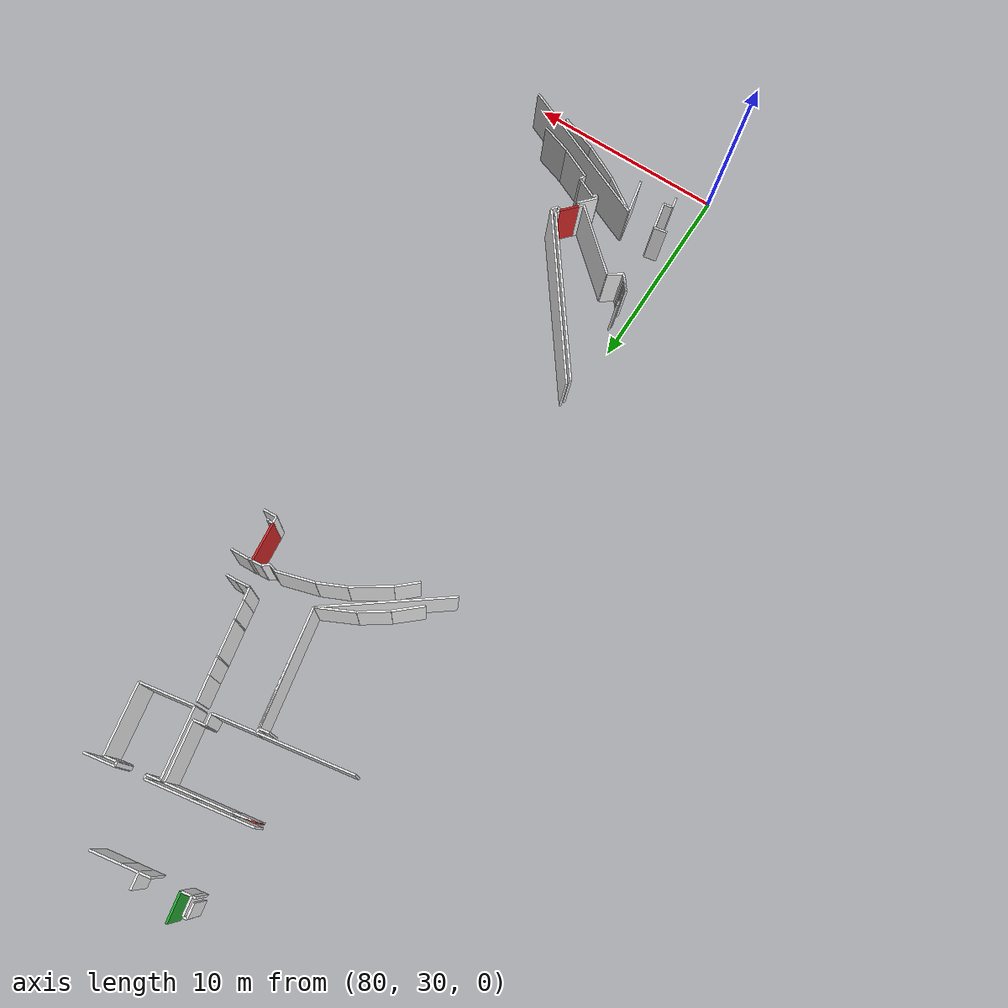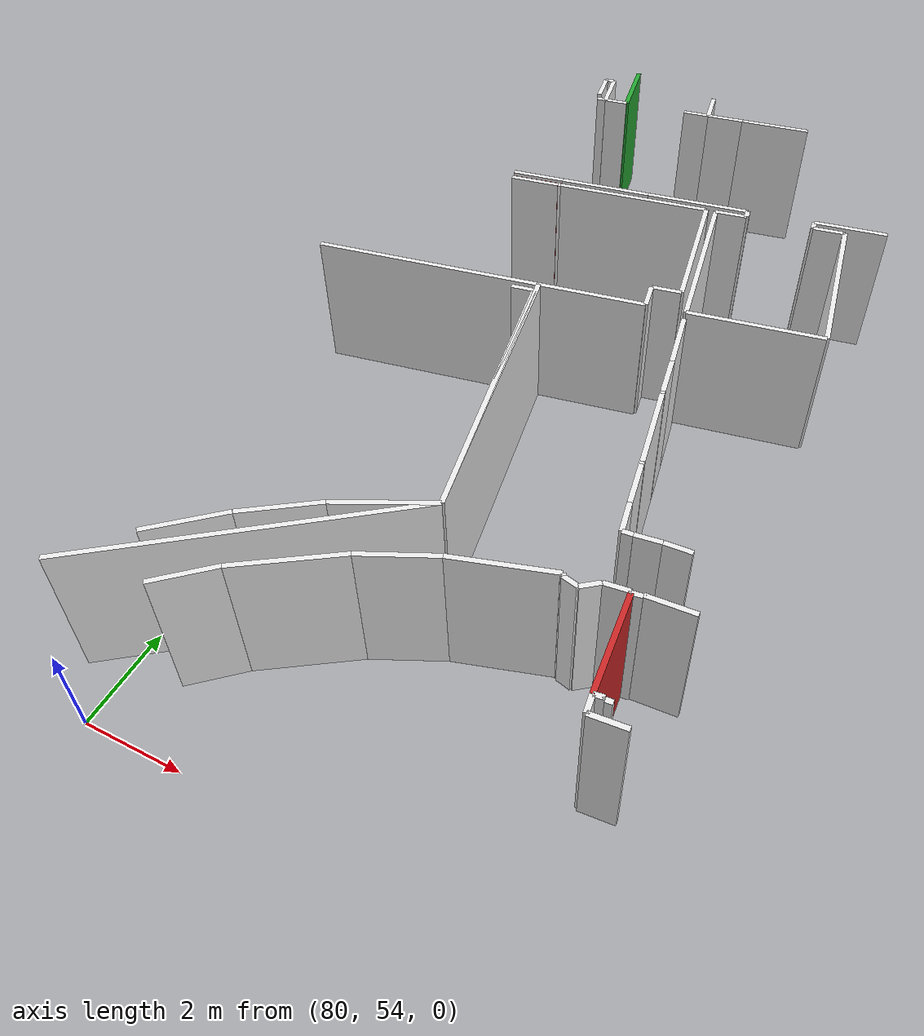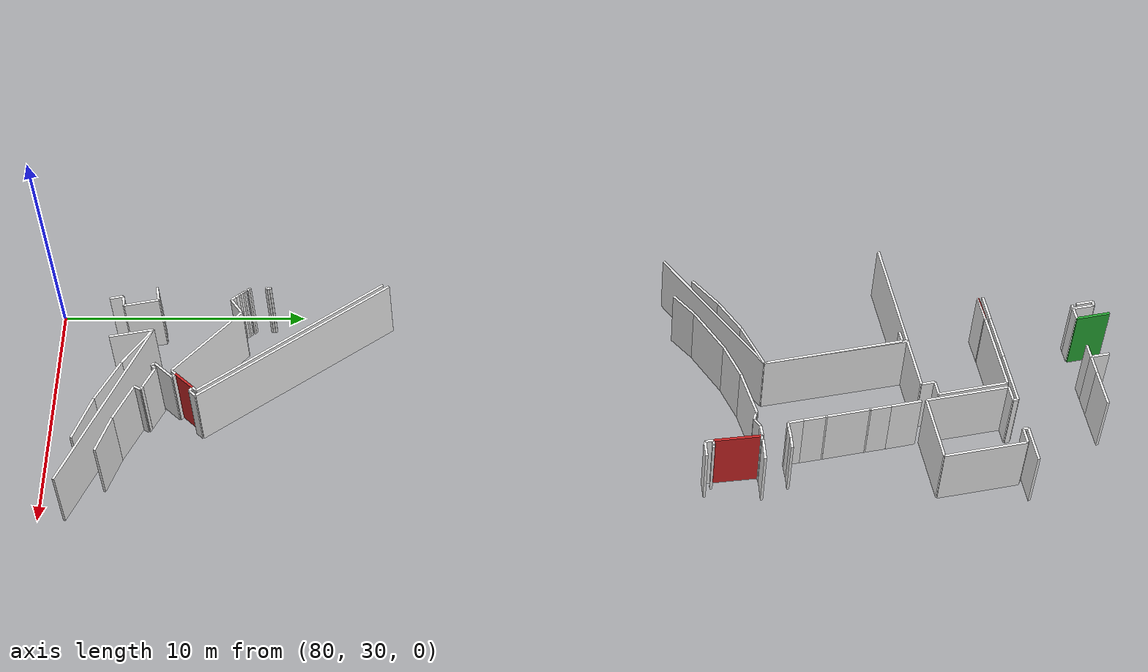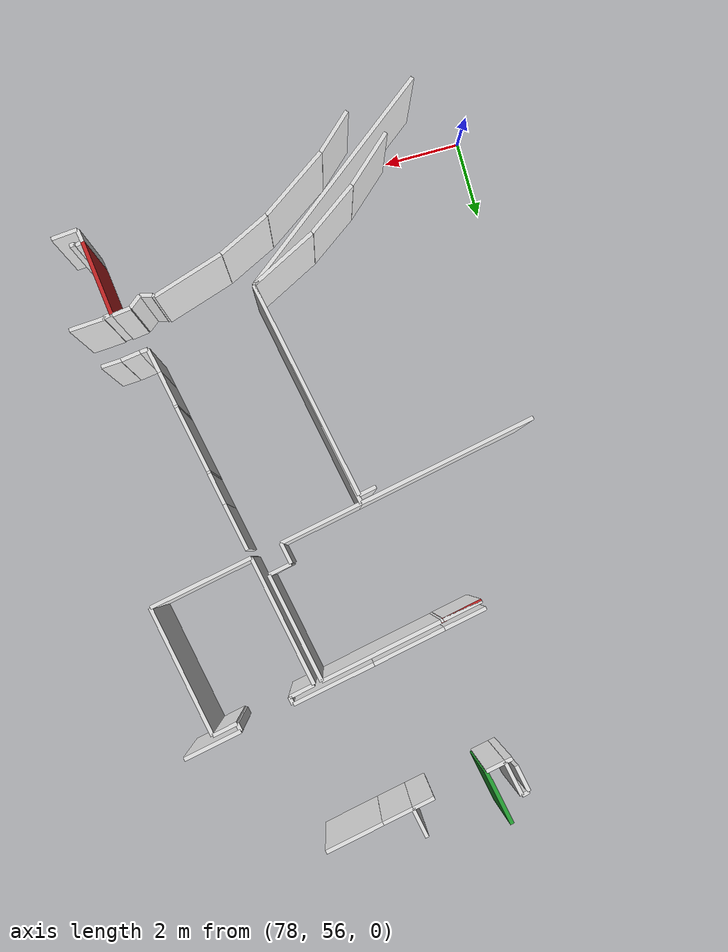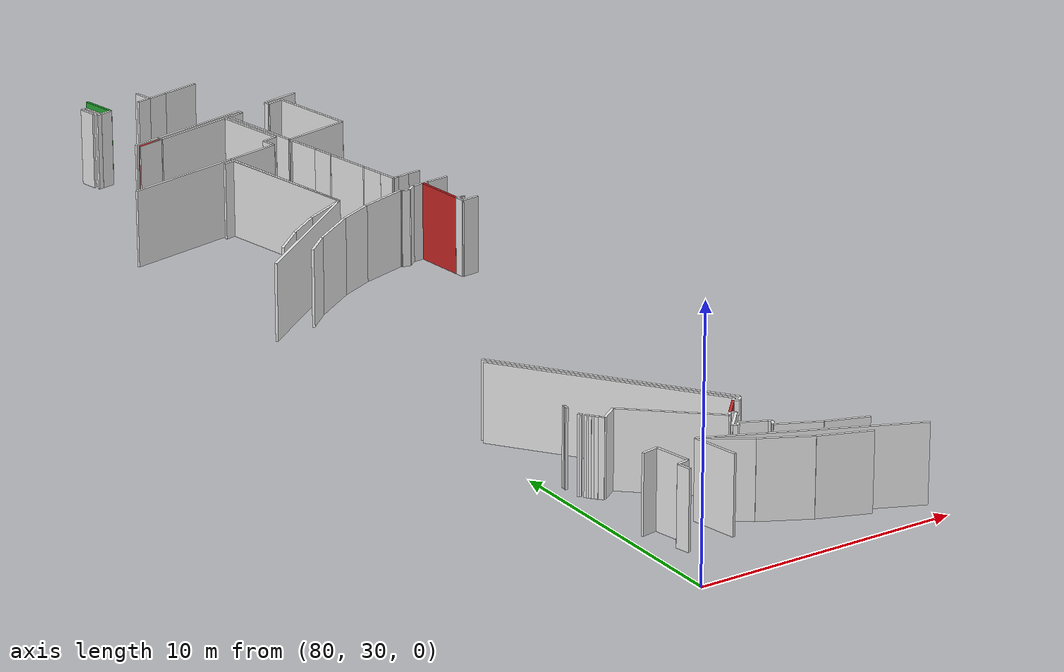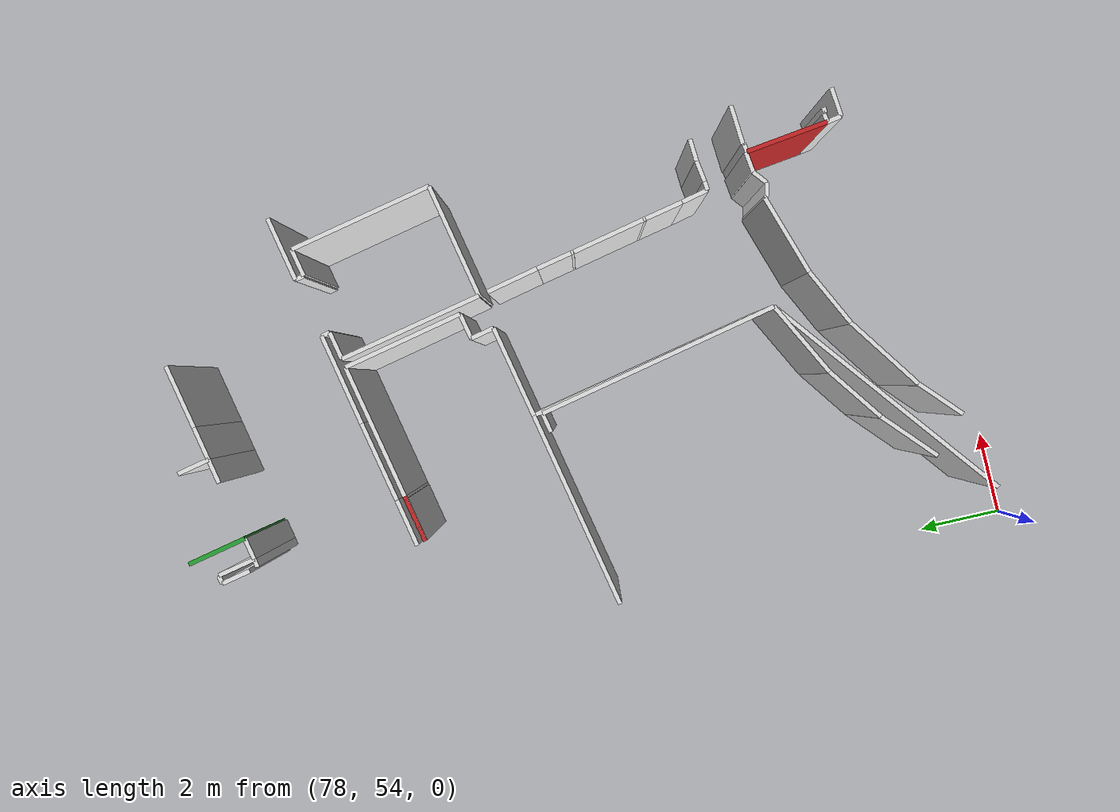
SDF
<sdf version="1.6">
 <world name="default">
  <model name="wall_81.6_67.9">
   <static>true</static>
   <pose>81.55000000001746 67.88999999989755 1.5 0 0 0.2009542638673007</pose>
   <link name="link">
    <visual name="visual">
     <geometry><box><size>1.1021796587332557 0.1 3</size></box></geometry>
     <material>
      <script><uri>file://media/materials/scripts/gazebo.material</uri><name>Gazebo/Red</name></script>
     </material>
    </visual>
   </link>
  </model>
  <model name="wall_85.3_35.8">
   <static>true</static>
   <pose>85.27999999999884 35.77000000001863 1.5 0 0 0.8424789459730314</pose>
   <link name="link">
    <visual name="visual">
     <geometry><box><size>0.9915644206490059 0.1 3</size></box></geometry>
     <material>
      <script><uri>file://media/materials/scripts/gazebo.material</uri><name>Gazebo/Red</name></script>
     </material>
    </visual>
   </link>
  </model>
  <model name="wall_87.9_57.8">
   <static>true</static>
   <pose>87.93499999999767 57.77499999990687 1.5 0 0 -1.4509545189031208</pose>
   <link name="link">
    <visual name="visual">
     <geometry><box><size>1.9237983263743257 0.1 3</size></box></geometry>
     <material>
      <script><uri>file://media/materials/scripts/gazebo.material</uri><name>Gazebo/Red</name></script>
     </material>
    </visual>
   </link>
  </model>
  <model name="wall_81.9_72.4">
   <static>true</static>
   <pose>81.875 72.38500000000931 1.5 0 0 1.7681918866447774</pose>
   <link name="link">
    <visual name="visual">
     <geometry><box><size>1.3767352687650285 0.1 3</size></box></geometry>
     <material>
      <script><uri>file://media/materials/scripts/gazebo.material</uri><name>Gazebo/Green</name></script>
     </material>
    </visual>
   </link>
  </model>
  <model name="wall_81.2_72.1">
   <static>true</static>
   <pose>81.21500000002561 72.10000000009313 1.5 0 0 1.7652764429739842</pose>
   <link name="link">
    <visual name="visual">
     <geometry><box><size>0.6726812025007879 0.1 3</size></box></geometry>
     <material>
      <script><uri>file://media/materials/scripts/gazebo.material</uri><name>Gazebo/White</name></script>
     </material>
    </visual>
   </link>
  </model>
  <model name="wall_80.9_64.3">
   <static>true</static>
   <pose>80.89999999999418 64.30999999982305 1.5 0 0 0.19486391966931105</pose>
   <link name="link">
    <visual name="visual">
     <geometry><box><size>4.647967297627117 0.1 3</size></box></geometry>
     <material>
      <script><uri>file://media/materials/scripts/gazebo.material</uri><name>Gazebo/White</name></script>
     </material>
    </visual>
   </link>
  </model>
  <model name="wall_84.2_65.0">
   <static>true</static>
   <pose>84.23999999999069 64.96999999997206 1.5 0 0 0.1955806799877843</pose>
   <link name="link">
    <visual name="visual">
     <geometry><box><size>2.1612033685678047 0.1 3</size></box></geometry>
     <material>
      <script><uri>file://media/materials/scripts/gazebo.material</uri><name>Gazebo/White</name></script>
     </material>
    </visual>
   </link>
  </model>
  <model name="wall_85.2_65.5">
   <static>true</static>
   <pose>85.24499999999534 65.45000000018626 1.5 0 0 1.7717505904446613</pose>
   <link name="link">
    <visual name="visual">
     <geometry><box><size>0.551089829371909 0.1 3</size></box></geometry>
     <material>
      <script><uri>file://media/materials/scripts/gazebo.material</uri><name>Gazebo/White</name></script>
     </material>
    </visual>
   </link>
  </model>
  <model name="wall_85.5_65.8">
   <static>true</static>
   <pose>85.48500000001513 65.78000000002794 1.5 0 0 0.20065287673540141</pose>
   <link name="link">
    <visual name="visual">
     <geometry><box><size>0.6020797288941763 0.1 3</size></box></geometry>
     <material>
      <script><uri>file://media/materials/scripts/gazebo.material</uri><name>Gazebo/White</name></script>
     </material>
    </visual>
   </link>
  </model>
  <model name="wall_85.5_67.2">
   <static>true</static>
   <pose>85.5 67.22999999998137 1.5 0 0 1.7695750116283997</pose>
   <link name="link">
    <visual name="visual">
     <geometry><box><size>2.835842026896503 0.1 3</size></box></geometry>
     <material>
      <script><uri>file://media/materials/scripts/gazebo.material</uri><name>Gazebo/White</name></script>
     </material>
    </visual>
   </link>
  </model>
  <model name="wall_83.7_68.3">
   <static>true</static>
   <pose>83.65499999999884 68.31000000005588 1.5 0 0 -2.9460409760625255</pose>
   <link name="link">
    <visual name="visual">
     <geometry><box><size>3.190814942895208 0.1 3</size></box></geometry>
     <material>
      <script><uri>file://media/materials/scripts/gazebo.material</uri><name>Gazebo/White</name></script>
     </material>
    </visual>
   </link>
  </model>
  <model name="wall_82.1_68.0">
   <static>true</static>
   <pose>82.06000000002678 67.98999999999069 1.5 0 0 -2.8198420989021127</pose>
   <link name="link">
    <visual name="visual">
     <geometry><box><size>0.06324555320704896 0.1 3</size></box></geometry>
     <material>
      <script><uri>file://media/materials/scripts/gazebo.material</uri><name>Gazebo/White</name></script>
     </material>
    </visual>
   </link>
  </model>
  <model name="wall_81.5_67.9">
   <static>true</static>
   <pose>81.52000000001863 67.87999999988824 1.5 0 0 -2.9479706605614444</pose>
   <link name="link">
    <visual name="visual">
     <geometry><box><size>1.039422916869021 0.1 3</size></box></geometry>
     <material>
      <script><uri>file://media/materials/scripts/gazebo.material</uri><name>Gazebo/White</name></script>
     </material>
    </visual>
   </link>
  </model>
  <model name="wall_87.8_69.1">
   <static>true</static>
   <pose>87.75 69.11499999999069 1.5 0 0 -2.9411940992371117</pose>
   <link name="link">
    <visual name="visual">
     <geometry><box><size>0.653069674774366 0.1 3</size></box></geometry>
     <material>
      <script><uri>file://media/materials/scripts/gazebo.material</uri><name>Gazebo/White</name></script>
     </material>
    </visual>
   </link>
  </model>
  <model name="wall_85.7_68.7">
   <static>true</static>
   <pose>85.73999999999069 68.71499999985099 1.5 0 0 -2.9411940999358763</pose>
   <link name="link">
    <visual name="visual">
     <geometry><box><size>0.6530696746816714 0.1 3</size></box></geometry>
     <material>
      <script><uri>file://media/materials/scripts/gazebo.material</uri><name>Gazebo/White</name></script>
     </material>
    </visual>
   </link>
  </model>
  <model name="wall_85.8_67.0">
   <static>true</static>
   <pose>85.75 66.98999999999069 1.5 0 0 -1.374559514958863</pose>
   <link name="link">
    <visual name="visual">
     <geometry><box><size>3.384966764819104 0.1 3</size></box></geometry>
     <material>
      <script><uri>file://media/materials/scripts/gazebo.material</uri><name>Gazebo/White</name></script>
     </material>
    </visual>
   </link>
  </model>
  <model name="wall_87.4_65.6">
   <static>true</static>
   <pose>87.40499999999884 65.59000000008382 1.5 0 0 0.19376449375486982</pose>
   <link name="link">
    <visual name="visual">
     <geometry><box><size>2.70053698360794 0.1 3</size></box></geometry>
     <material>
      <script><uri>file://media/materials/scripts/gazebo.material</uri><name>Gazebo/White</name></script>
     </material>
    </visual>
   </link>
  </model>
  <model name="wall_88.4_67.5">
   <static>true</static>
   <pose>88.39999999999418 67.51500000013039 1.5 0 0 1.7664587861152812</pose>
   <link name="link">
    <visual name="visual">
     <geometry><box><size>3.394775397645977 0.1 3</size></box></geometry>
     <material>
      <script><uri>file://media/materials/scripts/gazebo.material</uri><name>Gazebo/White</name></script>
     </material>
    </visual>
   </link>
  </model>
  <model name="wall_83.1_39.9">
   <static>true</static>
   <pose>83.10500000001048 39.88000000012107 1.5 0 0 -0.9358171018698879</pose>
   <link name="link">
    <visual name="visual">
     <geometry><box><size>8.918323833668834 0.1 3</size></box></geometry>
     <material>
      <script><uri>file://media/materials/scripts/gazebo.material</uri><name>Gazebo/White</name></script>
     </material>
    </visual>
   </link>
  </model>
  <model name="wall_85.7_36.2">
   <static>true</static>
   <pose>85.67999999999302 36.21500000008382 1.5 0 0 -2.3217253895523142</pose>
   <link name="link">
    <visual name="visual">
     <geometry><box><size>0.20518284522827895 0.1 3</size></box></geometry>
     <material>
      <script><uri>file://media/materials/scripts/gazebo.material</uri><name>Gazebo/White</name></script>
     </material>
    </visual>
   </link>
  </model>
  <model name="wall_84.9_35.3">
   <static>true</static>
   <pose>84.86500000001979 35.31000000005588 1.5 0 0 -2.3276308331322193</pose>
   <link name="link">
    <visual name="visual">
     <geometry><box><size>0.24758836783494145 0.1 3</size></box></geometry>
     <material>
      <script><uri>file://media/materials/scripts/gazebo.material</uri><name>Gazebo/White</name></script>
     </material>
    </visual>
   </link>
  </model>
  <model name="wall_83.3_36.5">
   <static>true</static>
   <pose>83.3300000000163 36.515000000130385 1.5 0 0 2.4126008939400343</pose>
   <link name="link">
    <visual name="visual">
     <geometry><box><size>3.8882000976497033 0.1 3</size></box></geometry>
     <material>
      <script><uri>file://media/materials/scripts/gazebo.material</uri><name>Gazebo/White</name></script>
     </material>
    </visual>
   </link>
  </model>
  <model name="wall_81.6_37.6">
   <static>true</static>
   <pose>81.55999999999767 37.574999999953434 1.5 0 0 -2.508166770423084</pose>
   <link name="link">
    <visual name="visual">
     <geometry><box><size>0.7940403013767493 0.1 3</size></box></geometry>
     <material>
      <script><uri>file://media/materials/scripts/gazebo.material</uri><name>Gazebo/White</name></script>
     </material>
    </visual>
   </link>
  </model>
  <model name="wall_81.2_37.4">
   <static>true</static>
   <pose>81.1699999999837 37.419999999925494 1.5 0 0 2.2896263260044316</pose>
   <link name="link">
    <visual name="visual">
     <geometry><box><size>0.21260291637603487 0.1 3</size></box></geometry>
     <material>
      <script><uri>file://media/materials/scripts/gazebo.material</uri><name>Gazebo/White</name></script>
     </material>
    </visual>
   </link>
  </model>
  <model name="wall_81.1_37.6">
   <static>true</static>
   <pose>81.05499999999302 37.55499999993481 1.5 0 0 2.2565258381046025</pose>
   <link name="link">
    <visual name="visual">
     <geometry><box><size>0.1421267039139652 0.1 3</size></box></geometry>
     <material>
      <script><uri>file://media/materials/scripts/gazebo.material</uri><name>Gazebo/White</name></script>
     </material>
    </visual>
   </link>
  </model>
  <model name="wall_81.0_37.6">
   <static>true</static>
   <pose>80.98000000001048 37.64500000001863 1.5 0 0 2.2794225967996993</pose>
   <link name="link">
    <visual name="visual">
     <geometry><box><size>0.09219544479768974 0.1 3</size></box></geometry>
     <material>
      <script><uri>file://media/materials/scripts/gazebo.material</uri><name>Gazebo/White</name></script>
     </material>
    </visual>
   </link>
  </model>
  <model name="wall_80.9_37.7">
   <static>true</static>
   <pose>80.9200000000128 37.71999999997206 1.5 0 0 2.2142974379164873</pose>
   <link name="link">
    <visual name="visual">
     <geometry><box><size>0.09999999968567863 0.1 3</size></box></geometry>
     <material>
      <script><uri>file://media/materials/scripts/gazebo.material</uri><name>Gazebo/White</name></script>
     </material>
    </visual>
   </link>
  </model>
  <model name="wall_80.9_37.8">
   <static>true</static>
   <pose>80.86999999999534 37.78999999980442 1.5 0 0 2.158798930342464</pose>
   <link name="link">
    <visual name="visual">
     <geometry><box><size>0.0721110255764384 0.1 3</size></box></geometry>
     <material>
      <script><uri>file://media/materials/scripts/gazebo.material</uri><name>Gazebo/White</name></script>
     </material>
    </visual>
   </link>
  </model>
  <model name="wall_80.8_37.9">
   <static>true</static>
   <pose>80.82499999998254 37.85499999998137 1.5 0 0 2.1910458106539252</pose>
   <link name="link">
    <visual name="visual">
     <geometry><box><size>0.08602325290617123 0.1 3</size></box></geometry>
     <material>
      <script><uri>file://media/materials/scripts/gazebo.material</uri><name>Gazebo/White</name></script>
     </material>
    </visual>
   </link>
  </model>
  <model name="wall_80.7_38.0">
   <static>true</static>
   <pose>80.72000000000116 37.98999999999069 1.5 0 0 2.158798929670837</pose>
   <link name="link">
    <visual name="visual">
     <geometry><box><size>0.07211102554415061 0.1 3</size></box></geometry>
     <material>
      <script><uri>file://media/materials/scripts/gazebo.material</uri><name>Gazebo/White</name></script>
     </material>
    </visual>
   </link>
  </model>
  <model name="wall_80.7_38.1">
   <static>true</static>
   <pose>80.67500000001746 38.050000000046566 1.5 0 0 2.2655346024190655</pose>
   <link name="link">
    <visual name="visual">
     <geometry><box><size>0.07810249679454152 0.1 3</size></box></geometry>
     <material>
      <script><uri>file://media/materials/scripts/gazebo.material</uri><name>Gazebo/White</name></script>
     </material>
    </visual>
   </link>
  </model>
  <model name="wall_80.6_38.7">
   <static>true</static>
   <pose>80.63000000000466 38.71999999997206 1.5 0 0 1.3258176622984403</pose>
   <link name="link">
    <visual name="visual">
     <geometry><box><size>0.08246211213739423 0.1 3</size></box></geometry>
     <material>
      <script><uri>file://media/materials/scripts/gazebo.material</uri><name>Gazebo/White</name></script>
     </material>
    </visual>
   </link>
  </model>
  <model name="wall_80.6_38.8">
   <static>true</static>
   <pose>80.64500000001863 38.80499999993481 1.5 0 0 1.4601391059049407</pose>
   <link name="link">
    <visual name="visual">
     <geometry><box><size>0.0905538516971156 0.1 3</size></box></geometry>
     <material>
      <script><uri>file://media/materials/scripts/gazebo.material</uri><name>Gazebo/White</name></script>
     </material>
    </visual>
   </link>
  </model>
  <model name="wall_80.6_38.9">
   <static>true</static>
   <pose>80.64500000001863 38.890000000130385 1.5 0 0 1.695151321341658</pose>
   <link name="link">
    <visual name="visual">
     <geometry><box><size>0.08062257755807112 0.1 3</size></box></geometry>
     <material>
      <script><uri>file://media/materials/scripts/gazebo.material</uri><name>Gazebo/White</name></script>
     </material>
    </visual>
   </link>
  </model>
  <model name="wall_88.5_58.8">
   <static>true</static>
   <pose>88.45999999999185 58.80999999982305 1.5 0 0 -3.0750244897495804</pose>
   <link name="link">
    <visual name="visual">
     <geometry><box><size>0.9019977826712443 0.1 3</size></box></geometry>
     <material>
      <script><uri>file://media/materials/scripts/gazebo.material</uri><name>Gazebo/White</name></script>
     </material>
    </visual>
   </link>
  </model>
  <model name="wall_88.0_58.8">
   <static>true</static>
   <pose>88.01500000001397 58.769999999785796 1.5 0 0 -1.1071487177940904</pose>
   <link name="link">
    <visual name="visual">
     <geometry><box><size>0.022360679795822902 0.1 3</size></box></geometry>
     <material>
      <script><uri>file://media/materials/scripts/gazebo.material</uri><name>Gazebo/White</name></script>
     </material>
    </visual>
   </link>
  </model>
  <model name="wall_87.9_58.7">
   <static>true</static>
   <pose>87.9200000000128 58.74499999987893 1.5 0 0 -2.992702706990747</pose>
   <link name="link">
    <visual name="visual">
     <geometry><box><size>0.20223748414268597 0.1 3</size></box></geometry>
     <material>
      <script><uri>file://media/materials/scripts/gazebo.material</uri><name>Gazebo/White</name></script>
     </material>
    </visual>
   </link>
  </model>
  <model name="wall_88.1_56.8">
   <static>true</static>
   <pose>88.14499999998952 56.83499999996275 1.5 0 0 0.15660187831921837</pose>
   <link name="link">
    <visual name="visual">
     <geometry><box><size>0.19235384065968367 0.1 3</size></box></geometry>
     <material>
      <script><uri>file://media/materials/scripts/gazebo.material</uri><name>Gazebo/White</name></script>
     </material>
    </visual>
   </link>
  </model>
  <model name="wall_88.2_56.8">
   <static>true</static>
   <pose>88.24499999999534 56.83499999996275 1.5 0 0 -1.2490457747265609</pose>
   <link name="link">
    <visual name="visual">
     <geometry><box><size>0.031622776852017344 0.1 3</size></box></geometry>
     <material>
      <script><uri>file://media/materials/scripts/gazebo.material</uri><name>Gazebo/White</name></script>
     </material>
    </visual>
   </link>
  </model>
  <model name="wall_88.3_56.8">
   <static>true</static>
   <pose>88.31500000000233 56.824999999953434 1.5 0 0 0.07677189311872727</pose>
   <link name="link">
    <visual name="visual">
     <geometry><box><size>0.13038404812726748 0.1 3</size></box></geometry>
     <material>
      <script><uri>file://media/materials/scripts/gazebo.material</uri><name>Gazebo/White</name></script>
     </material>
    </visual>
   </link>
  </model>
  <model name="wall_81.4_55.8">
   <static>true</static>
   <pose>81.41499999997905 55.79000000003725 1.5 0 0 0.7444853337953005</pose>
   <link name="link">
    <visual name="visual">
     <geometry><box><size>1.2101652781804741 0.1 3</size></box></geometry>
     <material>
      <script><uri>file://media/materials/scripts/gazebo.material</uri><name>Gazebo/White</name></script>
     </material>
    </visual>
   </link>
  </model>
  <model name="wall_82.7_56.8">
   <static>true</static>
   <pose>82.7049999999872 56.78000000002794 1.5 0 0 0.6015335773054936</pose>
   <link name="link">
    <visual name="visual">
     <geometry><box><size>2.0498048685846277 0.1 3</size></box></geometry>
     <material>
      <script><uri>file://media/materials/scripts/gazebo.material</uri><name>Gazebo/White</name></script>
     </material>
    </visual>
   </link>
  </model>
  <model name="wall_84.2_57.7">
   <static>true</static>
   <pose>84.20999999999185 57.67999999993481 1.5 0 0 0.45145309163045305</pose>
   <link name="link">
    <visual name="visual">
     <geometry><box><size>1.4669696657345486 0.1 3</size></box></geometry>
     <material>
      <script><uri>file://media/materials/scripts/gazebo.material</uri><name>Gazebo/White</name></script>
     </material>
    </visual>
   </link>
  </model>
  <model name="wall_85.8_58.3">
   <static>true</static>
   <pose>85.79000000000815 58.29000000003725 1.5 0 0 0.30535858012147843</pose>
   <link name="link">
    <visual name="visual">
     <geometry><box><size>1.9292485584238948 0.1 3</size></box></geometry>
     <material>
      <script><uri>file://media/materials/scripts/gazebo.material</uri><name>Gazebo/White</name></script>
     </material>
    </visual>
   </link>
  </model>
  <model name="wall_86.7_58.6">
   <static>true</static>
   <pose>86.72500000000582 58.55499999993481 1.5 0 0 -1.0303768294346956</pose>
   <link name="link">
    <visual name="visual">
     <geometry><box><size>0.058309519172461015 0.1 3</size></box></geometry>
     <material>
      <script><uri>file://media/materials/scripts/gazebo.material</uri><name>Gazebo/White</name></script>
     </material>
    </visual>
   </link>
  </model>
  <model name="wall_86.9_58.5">
   <static>true</static>
   <pose>86.88999999998487 58.49499999987893 1.5 0 0 -0.22923193275564116</pose>
   <link name="link">
    <visual name="visual">
     <geometry><box><size>0.30805843596555793 0.1 3</size></box></geometry>
     <material>
      <script><uri>file://media/materials/scripts/gazebo.material</uri><name>Gazebo/White</name></script>
     </material>
    </visual>
   </link>
  </model>
  <model name="wall_87.2_58.6">
   <static>true</static>
   <pose>87.19000000000233 58.580000000074506 1.5 0 0 0.6747409426021391</pose>
   <link name="link">
    <visual name="visual">
     <geometry><box><size>0.38418745442196317 0.1 3</size></box></geometry>
     <material>
      <script><uri>file://media/materials/scripts/gazebo.material</uri><name>Gazebo/White</name></script>
     </material>
    </visual>
   </link>
  </model>
  <model name="wall_87.6_58.7">
   <static>true</static>
   <pose>87.57500000001164 58.72999999998137 1.5 0 0 0.12697278876365076</pose>
   <link name="link">
    <visual name="visual">
     <geometry><box><size>0.4738143095396791 0.1 3</size></box></geometry>
     <material>
      <script><uri>file://media/materials/scripts/gazebo.material</uri><name>Gazebo/White</name></script>
     </material>
    </visual>
   </link>
  </model>
  <model name="wall_87.8_58.7">
   <static>true</static>
   <pose>87.81500000000233 58.74499999987893 1.5 0 0 -1.249045770069948</pose>
   <link name="link">
    <visual name="visual">
     <geometry><box><size>0.031622776410252254 0.1 3</size></box></geometry>
     <material>
      <script><uri>file://media/materials/scripts/gazebo.material</uri><name>Gazebo/White</name></script>
     </material>
    </visual>
   </link>
  </model>
  <model name="wall_88.1_56.7">
   <static>true</static>
   <pose>88.07499999998254 56.65500000002794 1.5 0 0 -1.4204248986466843</pose>
   <link name="link">
    <visual name="visual">
     <geometry><box><size>0.33376638497708727 0.1 3</size></box></geometry>
     <material>
      <script><uri>file://media/materials/scripts/gazebo.material</uri><name>Gazebo/White</name></script>
     </material>
    </visual>
   </link>
  </model>
  <model name="wall_88.4_56.5">
   <static>true</static>
   <pose>88.43499999999767 56.52000000001863 1.5 0 0 0.0893139923809162</pose>
   <link name="link">
    <visual name="visual">
     <geometry><box><size>0.6726812023588774 0.1 3</size></box></geometry>
     <material>
      <script><uri>file://media/materials/scripts/gazebo.material</uri><name>Gazebo/White</name></script>
     </material>
    </visual>
   </link>
  </model>
  <model name="wall_87.9_32.8">
   <static>true</static>
   <pose>87.86499999999069 32.80499999993481 1.5 0 0 2.8081238857159727</pose>
   <link name="link">
    <visual name="visual">
     <geometry><box><size>1.6191973319729474 0.1 3</size></box></geometry>
     <material>
      <script><uri>file://media/materials/scripts/gazebo.material</uri><name>Gazebo/White</name></script>
     </material>
    </visual>
   </link>
  </model>
  <model name="wall_86.3_33.4">
   <static>true</static>
   <pose>86.3299999999872 33.43499999982305 1.5 0 0 2.6989393348950688</pose>
   <link name="link">
    <visual name="visual">
     <geometry><box><size>1.704259369904788 0.1 3</size></box></geometry>
     <material>
      <script><uri>file://media/materials/scripts/gazebo.material</uri><name>Gazebo/White</name></script>
     </material>
    </visual>
   </link>
  </model>
  <model name="wall_85.6_33.9">
   <static>true</static>
   <pose>85.63500000000931 33.92999999993481 1.5 0 0 1.0475180049988588</pose>
   <link name="link">
    <visual name="visual">
     <geometry><box><size>0.3001666206174493 0.1 3</size></box></geometry>
     <material>
      <script><uri>file://media/materials/scripts/gazebo.material</uri><name>Gazebo/White</name></script>
     </material>
    </visual>
   </link>
  </model>
  <model name="wall_85.6_34.1">
   <static>true</static>
   <pose>85.64500000001863 34.09499999997206 1.5 0 0 2.647651285684841</pose>
   <link name="link">
    <visual name="visual">
     <geometry><box><size>0.14764823052695686 0.1 3</size></box></geometry>
     <material>
      <script><uri>file://media/materials/scripts/gazebo.material</uri><name>Gazebo/White</name></script>
     </material>
    </visual>
   </link>
  </model>
  <model name="wall_85.1_34.3">
   <static>true</static>
   <pose>85.125 34.3499999998603 1.5 0 0 2.6912186013369697</pose>
   <link name="link">
    <visual name="visual">
     <geometry><box><size>1.0107917688674317 0.1 3</size></box></geometry>
     <material>
      <script><uri>file://media/materials/scripts/gazebo.material</uri><name>Gazebo/White</name></script>
     </material>
    </visual>
   </link>
  </model>
  <model name="wall_84.6_34.5">
   <static>true</static>
   <pose>84.61499999999069 34.484999999869615 1.5 0 0 -2.145101157111568</pose>
   <link name="link">
    <visual name="visual">
     <geometry><box><size>0.20248456724302388 0.1 3</size></box></geometry>
     <material>
      <script><uri>file://media/materials/scripts/gazebo.material</uri><name>Gazebo/White</name></script>
     </material>
    </visual>
   </link>
  </model>
  <model name="wall_84.5_34.4">
   <static>true</static>
   <pose>84.48499999998603 34.449999999953434 1.5 0 0 2.5535900496840247</pose>
   <link name="link">
    <visual name="visual">
     <geometry><box><size>0.18027756384423263 0.1 3</size></box></geometry>
     <material>
      <script><uri>file://media/materials/scripts/gazebo.material</uri><name>Gazebo/White</name></script>
     </material>
    </visual>
   </link>
  </model>
  <model name="wall_84.8_34.9">
   <static>true</static>
   <pose>84.75499999997555 34.88500000000931 1.5 0 0 0.8401379434576747</pose>
   <link name="link">
    <visual name="visual">
     <geometry><box><size>1.0339245620604522 0.1 3</size></box></geometry>
     <material>
      <script><uri>file://media/materials/scripts/gazebo.material</uri><name>Gazebo/White</name></script>
     </material>
    </visual>
   </link>
  </model>
  <model name="wall_85.0_35.3">
   <static>true</static>
   <pose>85.02499999999418 35.33499999996275 1.5 0 0 2.427501955287879</pose>
   <link name="link">
    <visual name="visual">
     <geometry><box><size>0.19849433231320573 0.1 3</size></box></geometry>
     <material>
      <script><uri>file://media/materials/scripts/gazebo.material</uri><name>Gazebo/White</name></script>
     </material>
    </visual>
   </link>
  </model>
  <model name="wall_85.7_36.1">
   <static>true</static>
   <pose>85.69000000000233 36.080000000074506 1.5 0 0 -0.6435011091425303</pose>
   <link name="link">
    <visual name="visual">
     <geometry><box><size>0.20000000009313226 0.1 3</size></box></geometry>
     <material>
      <script><uri>file://media/materials/scripts/gazebo.material</uri><name>Gazebo/White</name></script>
     </material>
    </visual>
   </link>
  </model>
  <model name="wall_85.9_36.1">
   <static>true</static>
   <pose>85.88500000000931 36.14999999990687 1.5 0 0 0.8465463256603086</pose>
   <link name="link">
    <visual name="visual">
     <geometry><box><size>0.34713109897444044 0.1 3</size></box></geometry>
     <material>
      <script><uri>file://media/materials/scripts/gazebo.material</uri><name>Gazebo/White</name></script>
     </material>
    </visual>
   </link>
  </model>
  <model name="wall_83.3_40.0">
   <static>true</static>
   <pose>83.26500000001397 40.0 1.5 0 0 2.2047677262171748</pose>
   <link name="link">
    <visual name="visual">
     <geometry><box><size>9.234419310697987 0.1 3</size></box></geometry>
     <material>
      <script><uri>file://media/materials/scripts/gazebo.material</uri><name>Gazebo/White</name></script>
     </material>
    </visual>
   </link>
  </model>
  <model name="wall_83.8_72.5">
   <static>true</static>
   <pose>83.84500000000116 72.45999999996275 1.5 0 0 -1.3708033702928581</pose>
   <link name="link">
    <visual name="visual">
     <geometry><box><size>0.7550496674526308 0.1 3</size></box></geometry>
     <material>
      <script><uri>file://media/materials/scripts/gazebo.material</uri><name>Gazebo/White</name></script>
     </material>
    </visual>
   </link>
  </model>
  <model name="wall_83.6_72.0">
   <static>true</static>
   <pose>83.63999999998487 72.03499999991618 1.5 0 0 -2.9476335065532946</pose>
   <link name="link">
    <visual name="visual">
     <geometry><box><size>0.5707013229077953 0.1 3</size></box></geometry>
     <material>
      <script><uri>file://media/materials/scripts/gazebo.material</uri><name>Gazebo/White</name></script>
     </material>
    </visual>
   </link>
  </model>
  <model name="wall_81.8_71.7">
   <static>true</static>
   <pose>81.76000000000931 71.65999999991618 1.5 0 0 -2.944197093560812</pose>
   <link name="link">
    <visual name="visual">
     <geometry><box><size>0.5099019513775432 0.1 3</size></box></geometry>
     <material>
      <script><uri>file://media/materials/scripts/gazebo.material</uri><name>Gazebo/White</name></script>
     </material>
    </visual>
   </link>
  </model>
  <model name="wall_81.4_72.0">
   <static>true</static>
   <pose>81.42500000001746 72.04000000003725 1.5 0 0 1.7659547538191616</pose>
   <link name="link">
    <visual name="visual">
     <geometry><box><size>0.8766413180834757 0.1 3</size></box></geometry>
     <material>
      <script><uri>file://media/materials/scripts/gazebo.material</uri><name>Gazebo/White</name></script>
     </material>
    </visual>
   </link>
  </model>
  <model name="wall_81.2_72.5">
   <static>true</static>
   <pose>81.24500000002445 72.45000000018626 1.5 0 0 -2.9340964269693144</pose>
   <link name="link">
    <visual name="visual">
     <geometry><box><size>0.19416487839942884 0.1 3</size></box></geometry>
     <material>
      <script><uri>file://media/materials/scripts/gazebo.material</uri><name>Gazebo/White</name></script>
     </material>
    </visual>
   </link>
  </model>
  <model name="wall_88.1_59.9">
   <static>true</static>
   <pose>88.13500000000931 59.89500000001863 1.5 0 0 -3.08283683036559</pose>
   <link name="link">
    <visual name="visual">
     <geometry><box><size>0.5108815910024022 0.1 3</size></box></geometry>
     <material>
      <script><uri>file://media/materials/scripts/gazebo.material</uri><name>Gazebo/White</name></script>
     </material>
    </visual>
   </link>
  </model>
  <model name="wall_87.6_59.8">
   <static>true</static>
   <pose>87.63500000000931 59.84499999997206 1.5 0 0 -2.9996955993182444</pose>
   <link name="link">
    <visual name="visual">
     <geometry><box><size>0.494974746797656 0.1 3</size></box></geometry>
     <material>
      <script><uri>file://media/materials/scripts/gazebo.material</uri><name>Gazebo/White</name></script>
     </material>
    </visual>
   </link>
  </model>
  <model name="wall_87.3_59.8">
   <static>true</static>
   <pose>87.29000000000815 59.800000000046566 1.5 0 0 -3.0419240010121844</pose>
   <link name="link">
    <visual name="visual">
     <geometry><box><size>0.20099751243585498 0.1 3</size></box></geometry>
     <material>
      <script><uri>file://media/materials/scripts/gazebo.material</uri><name>Gazebo/White</name></script>
     </material>
    </visual>
   </link>
  </model>
  <model name="wall_87.1_60.1">
   <static>true</static>
   <pose>87.125 60.10000000009313 1.5 0 0 1.7774795452501364</pose>
   <link name="link">
    <visual name="visual">
     <geometry><box><size>0.6334824386988099 0.1 3</size></box></geometry>
     <material>
      <script><uri>file://media/materials/scripts/gazebo.material</uri><name>Gazebo/White</name></script>
     </material>
    </visual>
   </link>
  </model>
  <model name="wall_87.0_60.9">
   <static>true</static>
   <pose>86.97500000000582 60.85000000009313 1.5 0 0 1.7616274295219554</pose>
   <link name="link">
    <visual name="visual">
     <geometry><box><size>0.896270048477446 0.1 3</size></box></geometry>
     <material>
      <script><uri>file://media/materials/scripts/gazebo.material</uri><name>Gazebo/White</name></script>
     </material>
    </visual>
   </link>
  </model>
  <model name="wall_86.9_61.3">
   <static>true</static>
   <pose>86.88500000000931 61.32000000006519 1.5 0 0 1.7359450042095235</pose>
   <link name="link">
    <visual name="visual">
     <geometry><box><size>0.060827625359632334 0.1 3</size></box></geometry>
     <material>
      <script><uri>file://media/materials/scripts/gazebo.material</uri><name>Gazebo/White</name></script>
     </material>
    </visual>
   </link>
  </model>
  <model name="wall_86.7_62.2">
   <static>true</static>
   <pose>86.70999999999185 62.19500000006519 1.5 0 0 1.7693295426026865</pose>
   <link name="link">
    <visual name="visual">
     <geometry><box><size>1.7238619433784548 0.1 3</size></box></geometry>
     <material>
      <script><uri>file://media/materials/scripts/gazebo.material</uri><name>Gazebo/White</name></script>
     </material>
    </visual>
   </link>
  </model>
  <model name="wall_86.5_63.1">
   <static>true</static>
   <pose>86.53500000000349 63.07000000006519 1.5 0 0 1.7359450032656154</pose>
   <link name="link">
    <visual name="visual">
     <geometry><box><size>0.06082762535006306 0.1 3</size></box></geometry>
     <material>
      <script><uri>file://media/materials/scripts/gazebo.material</uri><name>Gazebo/White</name></script>
     </material>
    </visual>
   </link>
  </model>
  <model name="wall_86.5_63.5">
   <static>true</static>
   <pose>86.45000000001164 63.51000000000931 1.5 0 0 1.7634970855340029</pose>
   <link name="link">
    <visual name="visual">
     <geometry><box><size>0.8354639428099243 0.1 3</size></box></geometry>
     <material>
      <script><uri>file://media/materials/scripts/gazebo.material</uri><name>Gazebo/White</name></script>
     </material>
    </visual>
   </link>
  </model>
  <model name="wall_86.2_64.5">
   <static>true</static>
   <pose>86.24499999999534 64.52499999990687 1.5 0 0 1.7745410076848542</pose>
   <link name="link">
    <visual name="visual">
     <geometry><box><size>1.2355565547193088 0.1 3</size></box></geometry>
     <material>
      <script><uri>file://media/materials/scripts/gazebo.material</uri><name>Gazebo/White</name></script>
     </material>
    </visual>
   </link>
  </model>
  <model name="wall_88.1_69.4">
   <static>true</static>
   <pose>88.13000000000466 69.39500000001863 1.5 0 0 -2.948098244273777</pose>
   <link name="link">
    <visual name="visual">
     <geometry><box><size>1.508144555394632 0.1 3</size></box></geometry>
     <material>
      <script><uri>file://media/materials/scripts/gazebo.material</uri><name>Gazebo/White</name></script>
     </material>
    </visual>
   </link>
  </model>
  <model name="wall_87.4_69.1">
   <static>true</static>
   <pose>87.41000000000349 69.14999999990687 1.5 0 0 -1.3734007672248605</pose>
   <link name="link">
    <visual name="visual">
     <geometry><box><size>0.2039607807222492 0.1 3</size></box></geometry>
     <material>
      <script><uri>file://media/materials/scripts/gazebo.material</uri><name>Gazebo/White</name></script>
     </material>
    </visual>
   </link>
  </model>
  <model name="wall_86.0_68.9">
   <static>true</static>
   <pose>86.04000000000815 68.875 1.5 0 0 1.7782925526897098</pose>
   <link name="link">
    <visual name="visual">
     <geometry><box><size>0.1941648787861511 0.1 3</size></box></geometry>
     <material>
      <script><uri>file://media/materials/scripts/gazebo.material</uri><name>Gazebo/White</name></script>
     </material>
    </visual>
   </link>
  </model>
  <model name="wall_85.0_68.8">
   <static>true</static>
   <pose>84.96499999999651 68.76500000013039 1.5 0 0 -2.9496714915424067</pose>
   <link name="link">
    <visual name="visual">
     <geometry><box><size>2.1494650497993386 0.1 3</size></box></geometry>
     <material>
      <script><uri>file://media/materials/scripts/gazebo.material</uri><name>Gazebo/White</name></script>
     </material>
    </visual>
   </link>
  </model>
  <model name="wall_83.0_68.4">
   <static>true</static>
   <pose>82.97999999998137 68.375 1.5 0 0 -2.9452312194754318</pose>
   <link name="link">
    <visual name="visual">
     <geometry><box><size>1.8964440408382035 0.1 3</size></box></geometry>
     <material>
      <script><uri>file://media/materials/scripts/gazebo.material</uri><name>Gazebo/White</name></script>
     </material>
    </visual>
   </link>
  </model>
  <model name="wall_81.5_68.1">
   <static>true</static>
   <pose>81.50500000000466 68.08499999996275 1.5 0 0 -2.9512641139252844</pose>
   <link name="link">
    <visual name="visual">
     <geometry><box><size>1.1100450440920377 0.1 3</size></box></geometry>
     <material>
      <script><uri>file://media/materials/scripts/gazebo.material</uri><name>Gazebo/White</name></script>
     </material>
    </visual>
   </link>
  </model>
  <model name="wall_81.4_71.6">
   <static>true</static>
   <pose>81.41500000000815 71.59499999997206 1.5 0 0 0.15660187592798475</pose>
   <link name="link">
    <visual name="visual">
     <geometry><box><size>0.19235384058705793 0.1 3</size></box></geometry>
     <material>
      <script><uri>file://media/materials/scripts/gazebo.material</uri><name>Gazebo/White</name></script>
     </material>
    </visual>
   </link>
  </model>
  <model name="wall_84.3_72.2">
   <static>true</static>
   <pose>84.30999999999767 72.16500000003725 1.5 0 0 0.18998828837264137</pose>
   <link name="link">
    <visual name="visual">
     <geometry><box><size>0.7942921377902116 0.1 3</size></box></geometry>
     <material>
      <script><uri>file://media/materials/scripts/gazebo.material</uri><name>Gazebo/White</name></script>
     </material>
    </visual>
   </link>
  </model>
  <model name="wall_85.4_72.4">
   <static>true</static>
   <pose>85.44000000000233 72.38500000000931 1.5 0 0 0.19349440901301387</pose>
   <link name="link">
    <visual name="visual">
     <geometry><box><size>1.5081445553050903 0.1 3</size></box></geometry>
     <material>
      <script><uri>file://media/materials/scripts/gazebo.material</uri><name>Gazebo/White</name></script>
     </material>
    </visual>
   </link>
  </model>
  <model name="wall_80.9_34.3">
   <static>true</static>
   <pose>80.94000000000233 34.31000000005588 1.5 0 0 0.18534795016043343</pose>
   <link name="link">
    <visual name="visual">
     <geometry><box><size>0.6511528238783146 0.1 3</size></box></geometry>
     <material>
      <script><uri>file://media/materials/scripts/gazebo.material</uri><name>Gazebo/White</name></script>
     </material>
    </visual>
   </link>
  </model>
  <model name="wall_81.4_33.7">
   <static>true</static>
   <pose>81.39999999999418 33.68000000016764 1.5 0 0 -1.3706152588342921</pose>
   <link name="link">
    <visual name="visual">
     <geometry><box><size>1.408119313011009 0.1 3</size></box></geometry>
     <material>
      <script><uri>file://media/materials/scripts/gazebo.material</uri><name>Gazebo/White</name></script>
     </material>
    </visual>
   </link>
  </model>
  <model name="wall_81.3_32.9">
   <static>true</static>
   <pose>81.30999999999767 32.94500000006519 1.5 0 0 -2.9483811690637367</pose>
   <link name="link">
    <visual name="visual">
     <geometry><box><size>0.4687216658345593 0.1 3</size></box></geometry>
     <material>
      <script><uri>file://media/materials/scripts/gazebo.material</uri><name>Gazebo/White</name></script>
     </material>
    </visual>
   </link>
  </model>
  <model name="wall_81.1_32.6">
   <static>true</static>
   <pose>81.13500000000931 32.63500000000931 1.5 0 0 -1.3661545169134668</pose>
   <link name="link">
    <visual name="visual">
     <geometry><box><size>0.5412947439055198 0.1 3</size></box></geometry>
     <material>
      <script><uri>file://media/materials/scripts/gazebo.material</uri><name>Gazebo/White</name></script>
     </material>
    </visual>
   </link>
  </model>
  <model name="wall_83.0_64.5">
   <static>true</static>
   <pose>82.9549999999872 64.51500000013039 1.5 0 0 0.19739555952650487</pose>
   <link name="link">
    <visual name="visual">
     <geometry><box><size>0.45891175620554253 0.1 3</size></box></geometry>
     <material>
      <script><uri>file://media/materials/scripts/gazebo.material</uri><name>Gazebo/White</name></script>
     </material>
    </visual>
   </link>
  </model>
  <model name="wall_83.7_61.8">
   <static>true</static>
   <pose>83.73999999999069 61.75500000012107 1.5 0 0 -1.3737435848915833</pose>
   <link name="link">
    <visual name="visual">
     <geometry><box><size>5.720707998012715 0.1 3</size></box></geometry>
     <material>
      <script><uri>file://media/materials/scripts/gazebo.material</uri><name>Gazebo/White</name></script>
     </material>
    </visual>
   </link>
  </model>
  <model name="wall_83.4_58.5">
   <static>true</static>
   <pose>83.44500000000698 58.515000000130385 1.5 0 0 -2.6709521515229318</pose>
   <link name="link">
    <visual name="visual">
     <geometry><box><size>1.9185932346558128 0.1 3</size></box></geometry>
     <material>
      <script><uri>file://media/materials/scripts/gazebo.material</uri><name>Gazebo/White</name></script>
     </material>
    </visual>
   </link>
  </model>
  <model name="wall_82.0_57.6">
   <static>true</static>
   <pose>81.96500000002561 57.63500000000931 1.5 0 0 -2.52285831789347</pose>
   <link name="link">
    <visual name="visual">
     <geometry><box><size>1.5344705928208873 0.1 3</size></box></geometry>
     <material>
      <script><uri>file://media/materials/scripts/gazebo.material</uri><name>Gazebo/White</name></script>
     </material>
    </visual>
   </link>
  </model>
  <model name="wall_80.8_56.7">
   <static>true</static>
   <pose>80.76500000001397 56.669999999925494 1.5 0 0 -2.4063806244587402</pose>
   <link name="link">
    <visual name="visual">
     <geometry><box><size>1.5505160431711233 0.1 3</size></box></geometry>
     <material>
      <script><uri>file://media/materials/scripts/gazebo.material</uri><name>Gazebo/White</name></script>
     </material>
    </visual>
   </link>
  </model>
  <model name="wall_82.9_33.4">
   <static>true</static>
   <pose>82.93499999999767 33.419999999925494 1.5 0 0 1.767098990916609</pose>
   <link name="link">
    <visual name="visual">
     <geometry><box><size>1.7944637079631676 0.1 3</size></box></geometry>
     <material>
      <script><uri>file://media/materials/scripts/gazebo.material</uri><name>Gazebo/White</name></script>
     </material>
    </visual>
   </link>
  </model>
  <model name="wall_83.6_33.7">
   <static>true</static>
   <pose>83.58499999999185 33.734999999869615 1.5 0 0 -0.6004846182035232</pose>
   <link name="link">
    <visual name="visual">
     <geometry><box><size>1.9998499942826147 0.1 3</size></box></geometry>
     <material>
      <script><uri>file://media/materials/scripts/gazebo.material</uri><name>Gazebo/White</name></script>
     </material>
    </visual>
   </link>
  </model>
  <model name="wall_85.3_32.7">
   <static>true</static>
   <pose>85.2949999999837 32.70999999996275 1.5 0 0 -0.47934138766953305</pose>
   <link name="link">
    <visual name="visual">
     <geometry><box><size>1.9948182874459637 0.1 3</size></box></geometry>
     <material>
      <script><uri>file://media/materials/scripts/gazebo.material</uri><name>Gazebo/White</name></script>
     </material>
    </visual>
   </link>
  </model>
  <model name="wall_87.1_31.9">
   <static>true</static>
   <pose>87.11499999999069 31.899999999906868 1.5 0 0 -0.3581845039546106</pose>
   <link name="link">
    <visual name="visual">
     <geometry><box><size>1.9967223142548778 0.1 3</size></box></geometry>
     <material>
      <script><uri>file://media/materials/scripts/gazebo.material</uri><name>Gazebo/White</name></script>
     </material>
    </visual>
   </link>
  </model>
  <model name="wall_86.4_32.7">
   <static>true</static>
   <pose>86.38000000000466 32.68999999994412 1.5 0 0 2.723112045214399</pose>
   <link name="link">
    <visual name="visual">
     <geometry><box><size>7.923761732800008 0.1 3</size></box></geometry>
     <material>
      <script><uri>file://media/materials/scripts/gazebo.material</uri><name>Gazebo/White</name></script>
     </material>
    </visual>
   </link>
  </model>
  <model name="wall_81.7_57.0">
   <static>true</static>
   <pose>81.74499999999534 56.97000000020489 1.5 0 0 0.6592795022457629</pose>
   <link name="link">
    <visual name="visual">
     <geometry><box><size>6.4648047147274434 0.1 3</size></box></geometry>
     <material>
      <script><uri>file://media/materials/scripts/gazebo.material</uri><name>Gazebo/White</name></script>
     </material>
    </visual>
   </link>
  </model>
  <model name="wall_83.7_61.9">
   <static>true</static>
   <pose>83.73999999999069 61.85499999998137 1.5 0 0 1.761231442220787</pose>
   <link name="link">
    <visual name="visual">
     <geometry><box><size>5.91696712811791 0.1 3</size></box></geometry>
     <material>
      <script><uri>file://media/materials/scripts/gazebo.material</uri><name>Gazebo/White</name></script>
     </material>
    </visual>
   </link>
  </model>
 </world>
</sdf>
